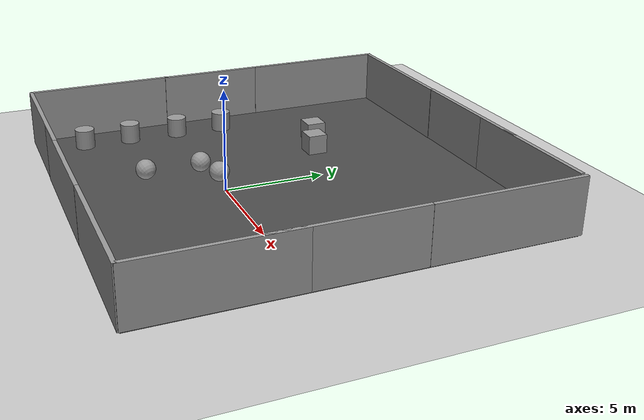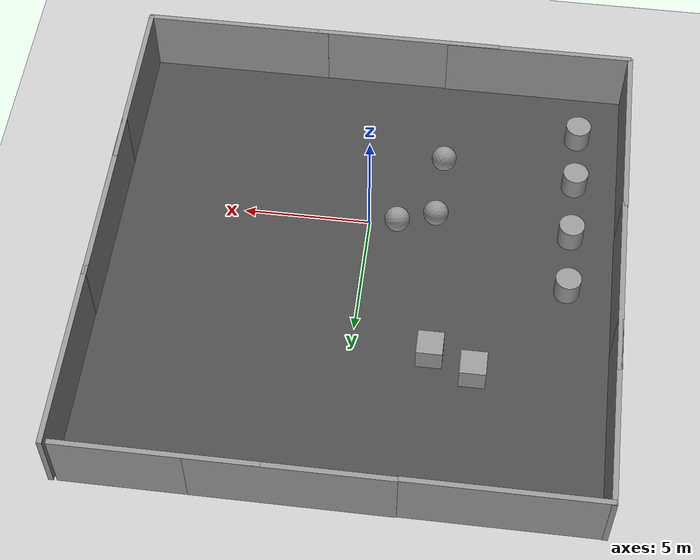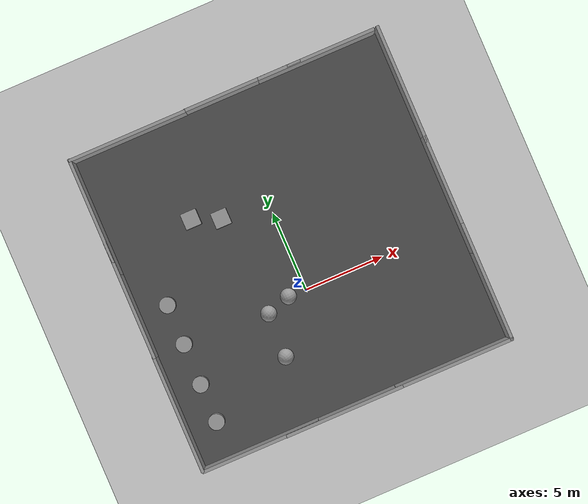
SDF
<sdf version="1.6">
 <world name="default">
  <light name="sun" type="directional">
   <pose>0 0 10 0 -0 0</pose>
   <diffuse>0.8 0.8 0.8 1</diffuse>
   <specular>0.1 0.1 0.1 1</specular>
   <attenuation>
    <range>1000</range>
    <constant>0.9</constant>
    <linear>0.01</linear>
    <quadratic>0.001</quadratic>
   </attenuation>
   <direction>-0.5 0.5 -1</direction>
  </light>
  <model name="ground_plane">
   <static>1</static>
   <link name="link">
    <collision name="collision">
     <geometry><plane><normal>0 0 1</normal><size>100 100</size></plane></geometry>
     <surface><friction><ode><mu>100</mu><mu2>50</mu2></ode></friction></surface>
    </collision>
    <visual name="visual">
     <cast_shadows>0</cast_shadows>
     <geometry><plane><normal>0 0 1</normal><size>100 100</size></plane></geometry>
     <material>
      <script><uri>file://media/materials/scripts/gazebo.material</uri><name>Gazebo/Grey</name></script>
     </material>
    </visual>
   </link>
  </model>
  <gravity>0 0 -9.8</gravity>
  <magnetic_field>6e-06 2.3e-05 -4.2e-05</magnetic_field>
  <atmosphere type="adiabatic"/>
  <physics name="default_physics" default="0" type="ode">
   <max_step_size>0.001</max_step_size>
   <real_time_factor>1</real_time_factor>
   <real_time_update_rate>1000</real_time_update_rate>
  </physics>
  <scene><ambient>0.4 0.4 0.4 1</ambient><background>0.7 0.7 0.7 1</background><shadows>1</shadows></scene>
  <spherical_coordinates>
   <surface_model>EARTH_WGS84</surface_model>
   <latitude_deg>0</latitude_deg>
   <longitude_deg>0</longitude_deg>
   <elevation>0</elevation>
   <heading_deg>0</heading_deg>
  </spherical_coordinates>
  <model name="asphalt_plane">
   <static>1</static>
   <link name="link">
    <collision name="collision"><geometry><box><size>20 20 0.1</size></box></geometry></collision>
    <visual name="visual">
     <cast_shadows>0</cast_shadows>
     <geometry><box><size>20 20 0.1</size></box></geometry>
     <material>
      <script>
       <uri>model://asphalt_plane/materials/scripts</uri>
       <uri>model://asphalt_plane/materials/textures</uri>
       <name>vrc/asphalt</name>
      </script>
     </material>
    </visual>
   </link>
   <pose>0.118211 2.53121 0 0 -0 0</pose>
  </model>
  <model name="grey_wall">
   <static>1</static>
   <link name="link">
    <pose>0 0 1.4 0 -0 0</pose>
    <collision name="collision"><geometry><box><size>7.5 0.2 2.8</size></box></geometry></collision>
    <visual name="visual">
     <cast_shadows>0</cast_shadows>
     <geometry><box><size>7.5 0.2 2.8</size></box></geometry>
     <material>
      <script>
       <uri>model://grey_wall/materials/scripts</uri>
       <uri>model://grey_wall/materials/textures</uri>
       <name>vrc/grey_wall</name>
      </script>
     </material>
    </visual>
   </link>
   <pose>-6.12088 12.5657 0 0 -0 0</pose>
  </model>
  <model name="grey_wall_clone">
   <static>1</static>
   <link name="link">
    <pose>0 0 1.4 0 -0 0</pose>
    <collision name="collision"><geometry><box><size>7.5 0.2 2.8</size></box></geometry></collision>
    <visual name="visual">
     <cast_shadows>0</cast_shadows>
     <geometry><box><size>7.5 0.2 2.8</size></box></geometry>
     <material>
      <script>
       <uri>model://grey_wall/materials/scripts</uri>
       <uri>model://grey_wall/materials/textures</uri>
       <name>vrc/grey_wall</name>
      </script>
     </material>
    </visual>
   </link>
   <pose>1.30377 12.5889 0 0 -0 0</pose>
  </model>
  <model name="grey_wall_clone_clone">
   <static>1</static>
   <link name="link">
    <pose>0 0 1.4 0 -0 0</pose>
    <collision name="collision"><geometry><box><size>7.5 0.2 2.8</size></box></geometry></collision>
    <visual name="visual">
     <cast_shadows>0</cast_shadows>
     <geometry><box><size>7.5 0.2 2.8</size></box></geometry>
     <material>
      <script>
       <uri>model://grey_wall/materials/scripts</uri>
       <uri>model://grey_wall/materials/textures</uri>
       <name>vrc/grey_wall</name>
      </script>
     </material>
    </visual>
   </link>
   <pose>6.06552 12.5877 0 0 -0 0</pose>
  </model>
  <model name="grey_wall_clone_clone_0">
   <static>1</static>
   <link name="link">
    <pose>0 0 1.4 0 -0 0</pose>
    <collision name="collision"><geometry><box><size>7.5 0.2 2.8</size></box></geometry></collision>
    <visual name="visual">
     <cast_shadows>0</cast_shadows>
     <geometry><box><size>7.5 0.2 2.8</size></box></geometry>
     <material>
      <script>
       <uri>model://grey_wall/materials/scripts</uri>
       <uri>model://grey_wall/materials/textures</uri>
       <name>vrc/grey_wall</name>
      </script>
     </material>
    </visual>
   </link>
   <pose>10.0357 8.94712 0 0 0 -1.57154</pose>
  </model>
  <model name="grey_wall_clone_clone_0_clone">
   <static>1</static>
   <link name="link">
    <pose>0 0 1.4 0 -0 0</pose>
    <collision name="collision"><geometry><box><size>7.5 0.2 2.8</size></box></geometry></collision>
    <visual name="visual">
     <cast_shadows>0</cast_shadows>
     <geometry><box><size>7.5 0.2 2.8</size></box></geometry>
     <material>
      <script>
       <uri>model://grey_wall/materials/scripts</uri>
       <uri>model://grey_wall/materials/textures</uri>
       <name>vrc/grey_wall</name>
      </script>
     </material>
    </visual>
   </link>
   <pose>10.0219 1.85289 0 0 0 -1.57154</pose>
  </model>
  <model name="grey_wall_clone_clone_0_clone_0">
   <static>1</static>
   <link name="link">
    <pose>0 0 1.4 0 -0 0</pose>
    <collision name="collision"><geometry><box><size>7.5 0.2 2.8</size></box></geometry></collision>
    <visual name="visual">
     <cast_shadows>0</cast_shadows>
     <geometry><box><size>7.5 0.2 2.8</size></box></geometry>
     <material>
      <script>
       <uri>model://grey_wall/materials/scripts</uri>
       <uri>model://grey_wall/materials/textures</uri>
       <name>vrc/grey_wall</name>
      </script>
     </material>
    </visual>
   </link>
   <pose>10.0217 -3.76546 0 0 0 -1.57154</pose>
  </model>
  <model name="grey_wall_clone_clone_clone">
   <static>1</static>
   <link name="link">
    <pose>0 0 1.4 0 -0 0</pose>
    <collision name="collision"><geometry><box><size>7.5 0.2 2.8</size></box></geometry></collision>
    <visual name="visual">
     <cast_shadows>0</cast_shadows>
     <geometry><box><size>7.5 0.2 2.8</size></box></geometry>
     <material>
      <script>
       <uri>model://grey_wall/materials/scripts</uri>
       <uri>model://grey_wall/materials/textures</uri>
       <name>vrc/grey_wall</name>
      </script>
     </material>
    </visual>
   </link>
   <pose>6.33498 -7.46812 0 0 -0 0</pose>
  </model>
  <model name="grey_wall_clone_clone_clone_0">
   <static>1</static>
   <link name="link">
    <pose>0 0 1.4 0 -0 0</pose>
    <collision name="collision"><geometry><box><size>7.5 0.2 2.8</size></box></geometry></collision>
    <visual name="visual">
     <cast_shadows>0</cast_shadows>
     <geometry><box><size>7.5 0.2 2.8</size></box></geometry>
     <material>
      <script>
       <uri>model://grey_wall/materials/scripts</uri>
       <uri>model://grey_wall/materials/textures</uri>
       <name>vrc/grey_wall</name>
      </script>
     </material>
    </visual>
   </link>
   <pose>-0.740583 -7.47315 0 0 -0 0</pose>
  </model>
  <model name="grey_wall_clone_clone_clone_1">
   <static>1</static>
   <link name="link">
    <pose>0 0 1.4 0 -0 0</pose>
    <collision name="collision"><geometry><box><size>7.5 0.2 2.8</size></box></geometry></collision>
    <visual name="visual">
     <cast_shadows>0</cast_shadows>
     <geometry><box><size>7.5 0.2 2.8</size></box></geometry>
     <material>
      <script>
       <uri>model://grey_wall/materials/scripts</uri>
       <uri>model://grey_wall/materials/textures</uri>
       <name>vrc/grey_wall</name>
      </script>
     </material>
    </visual>
   </link>
   <pose>-6.13352 -7.45259 0 0 -0 0</pose>
  </model>
  <model name="grey_wall_clone_clone_0_clone_0_clone">
   <static>1</static>
   <link name="link">
    <pose>0 0 1.4 0 -0 0</pose>
    <collision name="collision"><geometry><box><size>7.5 0.2 2.8</size></box></geometry></collision>
    <visual name="visual">
     <cast_shadows>0</cast_shadows>
     <geometry><box><size>7.5 0.2 2.8</size></box></geometry>
     <material>
      <script>
       <uri>model://grey_wall/materials/scripts</uri>
       <uri>model://grey_wall/materials/textures</uri>
       <name>vrc/grey_wall</name>
      </script>
     </material>
    </visual>
   </link>
   <pose>-9.85191 -3.7327 0 0 0 -1.57154</pose>
  </model>
  <model name="grey_wall_clone_clone_0_clone_0_clone_0">
   <static>1</static>
   <link name="link">
    <pose>0 0 1.4 0 -0 0</pose>
    <collision name="collision"><geometry><box><size>7.5 0.2 2.8</size></box></geometry></collision>
    <visual name="visual">
     <cast_shadows>0</cast_shadows>
     <geometry><box><size>7.5 0.2 2.8</size></box></geometry>
     <material>
      <script>
       <uri>model://grey_wall/materials/scripts</uri>
       <uri>model://grey_wall/materials/textures</uri>
       <name>vrc/grey_wall</name>
      </script>
     </material>
    </visual>
   </link>
   <pose>-9.82614 3.59127 0 0 0 -1.57154</pose>
  </model>
  <model name="grey_wall_clone_clone_0_clone_0_clone_1">
   <static>1</static>
   <link name="link">
    <pose>0 0 1.4 0 -0 0</pose>
    <collision name="collision"><geometry><box><size>7.5 0.2 2.8</size></box></geometry></collision>
    <visual name="visual">
     <cast_shadows>0</cast_shadows>
     <geometry><box><size>7.5 0.2 2.8</size></box></geometry>
     <material>
      <script>
       <uri>model://grey_wall/materials/scripts</uri>
       <uri>model://grey_wall/materials/textures</uri>
       <name>vrc/grey_wall</name>
      </script>
     </material>
    </visual>
   </link>
   <pose>-9.81531 8.93213 0 0 0 -1.57154</pose>
  </model>
  <model name="unit_sphere_0">
   <pose>-1.1234 0.061255 0.55 -2.82139 -1.40315 -0.265975</pose>
   <link name="link">
    <inertial>
     <mass>1</mass>
     <inertia><ixx>0.1</ixx><ixy>0</ixy><ixz>0</ixz><iyy>0.1</iyy><iyz>0</iyz><izz>0.1</izz></inertia>
    </inertial>
    <collision name="collision"><geometry><sphere><radius>0.5</radius></sphere></geometry></collision>
    <visual name="visual">
     <geometry><sphere><radius>0.5</radius></sphere></geometry>
     <material>
      <script><name>Gazebo/Grey</name><uri>file://media/materials/scripts/gazebo.material</uri></script>
     </material>
    </visual>
   </link>
  </model>
  <model name="unit_sphere_1">
   <pose>-2.70255 -3.19949 0.55 -2.7133 -0.972903 -0.170407</pose>
   <link name="link">
    <inertial>
     <mass>1</mass>
     <inertia><ixx>0.1</ixx><ixy>0</ixy><ixz>0</ixz><iyy>0.1</iyy><iyz>0</iyz><izz>0.1</izz></inertia>
    </inertial>
    <collision name="collision"><geometry><sphere><radius>0.5</radius></sphere></geometry></collision>
    <visual name="visual">
     <geometry><sphere><radius>0.5</radius></sphere></geometry>
     <material>
      <script><name>Gazebo/Grey</name><uri>file://media/materials/scripts/gazebo.material</uri></script>
     </material>
    </visual>
   </link>
  </model>
  <model name="unit_sphere_2">
   <pose>-2.61844 -0.423236 0.55 -0.975994 0.785947 0.856752</pose>
   <link name="link">
    <inertial>
     <mass>1</mass>
     <inertia><ixx>0.1</ixx><ixy>0</ixy><ixz>0</ixz><iyy>0.1</iyy><iyz>0</iyz><izz>0.1</izz></inertia>
    </inertial>
    <collision name="collision"><geometry><sphere><radius>0.5</radius></sphere></geometry></collision>
    <visual name="visual">
     <geometry><sphere><radius>0.5</radius></sphere></geometry>
     <material>
      <script><name>Gazebo/Grey</name><uri>file://media/materials/scripts/gazebo.material</uri></script>
     </material>
    </visual>
   </link>
  </model>
  <model name="unit_cylinder_0">
   <pose>-8.04532 -5.13091 0.549999 7e-06 -3e-06 -0.000157</pose>
   <link name="link">
    <inertial>
     <mass>1</mass>
     <inertia><ixx>0.145833</ixx><ixy>0</ixy><ixz>0</ixz><iyy>0.145833</iyy><iyz>0</iyz><izz>0.125</izz></inertia>
    </inertial>
    <collision name="collision">
     <geometry><cylinder><radius>0.5</radius><length>1</length></cylinder></geometry>
    </collision>
    <visual name="visual">
     <geometry><cylinder><radius>0.5</radius><length>1</length></cylinder></geometry>
     <material>
      <script><name>Gazebo/Grey</name><uri>file://media/materials/scripts/gazebo.material</uri></script>
     </material>
    </visual>
   </link>
  </model>
  <model name="unit_cylinder_1">
   <pose>-8.03339 -2.69935 0.54999 0 0 -0.000187</pose>
   <link name="link">
    <inertial>
     <mass>1</mass>
     <inertia><ixx>0.145833</ixx><ixy>0</ixy><ixz>0</ixz><iyy>0.145833</iyy><iyz>0</iyz><izz>0.125</izz></inertia>
    </inertial>
    <collision name="collision">
     <geometry><cylinder><radius>0.5</radius><length>1</length></cylinder></geometry>
    </collision>
    <visual name="visual">
     <geometry><cylinder><radius>0.5</radius><length>1</length></cylinder></geometry>
     <material>
      <script><name>Gazebo/Grey</name><uri>file://media/materials/scripts/gazebo.material</uri></script>
     </material>
    </visual>
   </link>
  </model>
  <model name="unit_cylinder_2">
   <pose>-7.99956 -0.098329 0.550001 -2e-06 2e-06 -0.000182</pose>
   <link name="link">
    <inertial>
     <mass>1</mass>
     <inertia><ixx>0.145833</ixx><ixy>0</ixy><ixz>0</ixz><iyy>0.145833</iyy><iyz>0</iyz><izz>0.125</izz></inertia>
    </inertial>
    <collision name="collision">
     <geometry><cylinder><radius>0.5</radius><length>1</length></cylinder></geometry>
    </collision>
    <visual name="visual">
     <geometry><cylinder><radius>0.5</radius><length>1</length></cylinder></geometry>
     <material>
      <script><name>Gazebo/Grey</name><uri>file://media/materials/scripts/gazebo.material</uri></script>
     </material>
    </visual>
   </link>
  </model>
  <model name="unit_cylinder_3">
   <pose>-7.98008 2.44312 0.550002 -3e-06 3e-06 -0.000161</pose>
   <link name="link">
    <inertial>
     <mass>1</mass>
     <inertia><ixx>0.145833</ixx><ixy>0</ixy><ixz>0</ixz><iyy>0.145833</iyy><iyz>0</iyz><izz>0.125</izz></inertia>
    </inertial>
    <collision name="collision">
     <geometry><cylinder><radius>0.5</radius><length>1</length></cylinder></geometry>
    </collision>
    <visual name="visual">
     <geometry><cylinder><radius>0.5</radius><length>1</length></cylinder></geometry>
     <material>
      <script><name>Gazebo/Grey</name><uri>file://media/materials/scripts/gazebo.material</uri></script>
     </material>
    </visual>
   </link>
  </model>
  <model name="unit_box_0">
   <pose>-4.65584 6.60809 0.55 0 -0 0</pose>
   <link name="link">
    <inertial>
     <mass>1</mass>
     <inertia>
      <ixx>0.166667</ixx>
      <ixy>0</ixy>
      <ixz>0</ixz>
      <iyy>0.166667</iyy>
      <iyz>0</iyz>
      <izz>0.166667</izz>
     </inertia>
    </inertial>
    <collision name="collision"><geometry><box><size>1 1 1</size></box></geometry></collision>
    <visual name="visual">
     <geometry><box><size>1 1 1</size></box></geometry>
     <material>
      <script><name>Gazebo/Grey</name><uri>file://media/materials/scripts/gazebo.material</uri></script>
     </material>
    </visual>
   </link>
  </model>
  <model name="unit_box_1">
   <pose>-2.97958 5.94032 0.55 0 -0 0</pose>
   <link name="link">
    <inertial>
     <mass>1</mass>
     <inertia>
      <ixx>0.166667</ixx>
      <ixy>0</ixy>
      <ixz>0</ixz>
      <iyy>0.166667</iyy>
      <iyz>0</iyz>
      <izz>0.166667</izz>
     </inertia>
    </inertial>
    <collision name="collision"><geometry><box><size>1 1 1</size></box></geometry></collision>
    <visual name="visual">
     <geometry><box><size>1 1 1</size></box></geometry>
     <material>
      <script><name>Gazebo/Grey</name><uri>file://media/materials/scripts/gazebo.material</uri></script>
     </material>
    </visual>
   </link>
  </model>
 </world>
</sdf>
